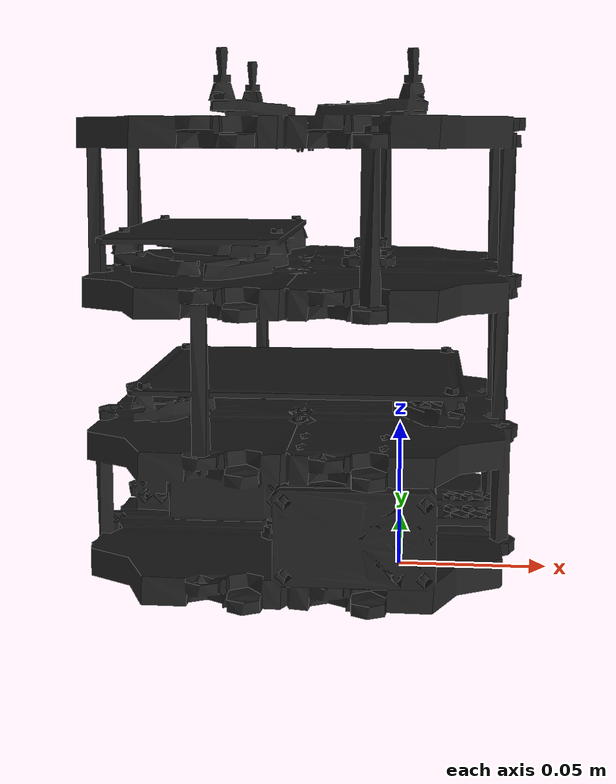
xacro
<?xml version="1.0" ?>
<robot name="turtlebot3_burger" xmlns:xacro="http://ros.org/wiki/xacro">
	<xacro:include filename="$(find turtlebot3_description)/urdf/common_properties.xacro"/>
	<xacro:include filename="$(find turtlebot3_description)/urdf/turtlebot3_burger.gazebo.xacro"/>

	<link name="base_footprint"/>
		<joint name="base_joint" type="fixed">
			<parent link="base_footprint"/>
			<child link="base_link"/>
			<origin xyz="0.0 0.0 0.010" rpy="0 0 0"/>
		</joint>

	<link name="base_link">
		<visual>
			<origin xyz="-0.032 0 0.0" rpy="0 0 0"/>
			<geometry>
				<mesh filename="package://turtlebot3_description/meshes/bases/burger_base.stl" scale="0.001 0.001 0.001"/>
			</geometry>
			<material name="light_black"/>
		</visual>

		<collision>
			<origin xyz="-0.032 0 0.070" rpy="0 0 0"/>
			<geometry>
				<box size="0.140 0.140 0.143"/>
			</geometry>
		</collision>

		<inertial>
		<origin xyz="0 0 0" rpy="0 0 0"/>
		<mass value="8.2573504e-01"/>
		<inertia ixx="2.2124416e-03" ixy="-1.2294101e-05" ixz="3.4938785e-05"
		       iyy="2.1193702e-03" iyz="-5.0120904e-06"
		       izz="2.0064271e-03" />
		</inertial>
	</link>

</robot>
